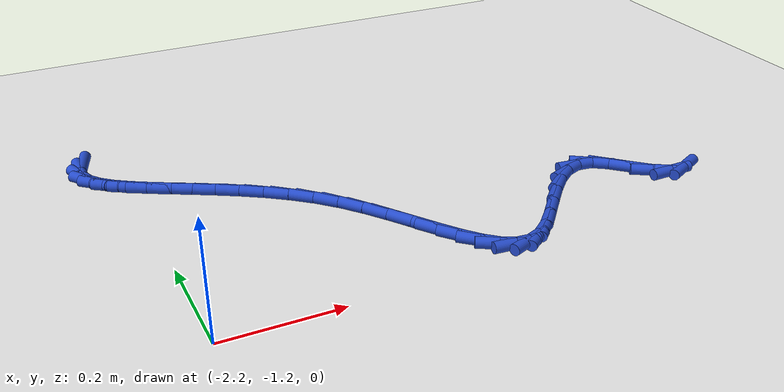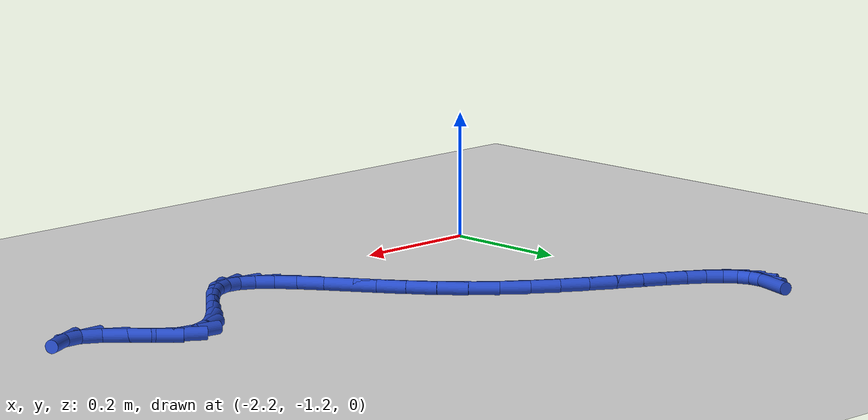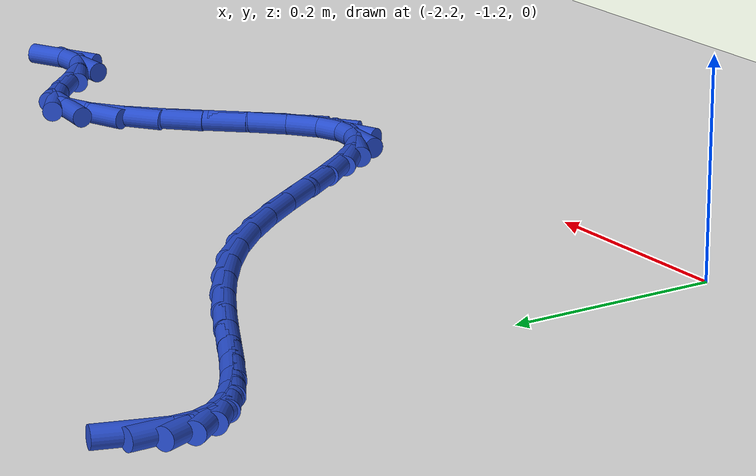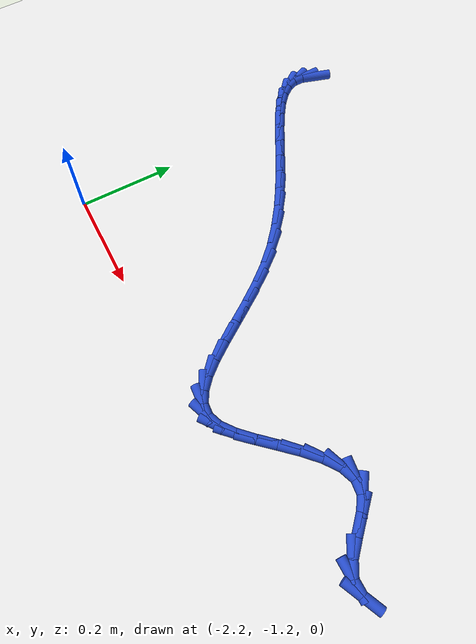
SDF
<sdf version="1.6">
 <world name="default">
  <model name="ground_plane">
   <static>1</static>
   <link name="link">
    <collision name="collision">
     <geometry><plane><normal>0 0 1</normal><size>100 100</size></plane></geometry>
     <surface><friction><ode><mu>100</mu><mu2>50</mu2></ode></friction></surface>
    </collision>
    <visual name="visual">
     <cast_shadows>0</cast_shadows>
     <geometry><plane><normal>0 0 1</normal><size>100 100</size></plane></geometry>
     <material>
      <script><uri>file://media/materials/scripts/gazebo.material</uri><name>Gazebo/WhiteGlow</name></script>
     </material>
    </visual>
   </link>
  </model>
  <model name="line">
   <link name="link_133">
    <pose>-2.264386961766214 -0.6096359925569589 0.01 0 1.57 1.2716807429699746</pose>
    <collision name="collision">
     <geometry><cylinder><radius>0.01</radius><length>0.08</length></cylinder></geometry>
    </collision>
    <visual name="visual">
     <material>
      <script><name>Gazebo/Blue</name><uri>file://media/materials/scripts/gazebo.material</uri></script>
     </material>
     <geometry><cylinder><radius>0.01</radius><length>0.08</length></cylinder></geometry>
    </visual>
   </link>
   <link name="link_134">
    <pose>-2.2714418762713504 -0.6325142634682939 0.01 0 1.57 -1.5569376244458604</pose>
    <collision name="collision">
     <geometry><cylinder><radius>0.01</radius><length>0.08</length></cylinder></geometry>
    </collision>
    <visual name="visual">
     <material>
      <script><name>Gazebo/Blue</name><uri>file://media/materials/scripts/gazebo.material</uri></script>
     </material>
     <geometry><cylinder><radius>0.01</radius><length>0.08</length></cylinder></geometry>
    </visual>
   </link>
   <link name="link_135">
    <pose>-2.271149407676412 -0.6536165184370312 0.01 0 1.57 -1.195219800106904</pose>
    <collision name="collision">
     <geometry><cylinder><radius>0.01</radius><length>0.08</length></cylinder></geometry>
    </collision>
    <visual name="visual">
     <material>
      <script><name>Gazebo/Blue</name><uri>file://media/materials/scripts/gazebo.material</uri></script>
     </material>
     <geometry><cylinder><radius>0.01</radius><length>0.08</length></cylinder></geometry>
    </visual>
   </link>
   <link name="link_136">
    <pose>-2.2634625045053087 -0.6731119477776801 0.01 0 1.57 -0.908454418214925</pose>
    <collision name="collision">
     <geometry><cylinder><radius>0.01</radius><length>0.08</length></cylinder></geometry>
    </collision>
    <visual name="visual">
     <material>
      <script><name>Gazebo/Blue</name><uri>file://media/materials/scripts/gazebo.material</uri></script>
     </material>
     <geometry><cylinder><radius>0.01</radius><length>0.08</length></cylinder></geometry>
    </visual>
   </link>
   <link name="link_137">
    <pose>-2.2491867083009063 -0.6914174356720993 0.01 0 1.57 -0.7190890568240736</pose>
    <collision name="collision">
     <geometry><cylinder><radius>0.01</radius><length>0.08</length></cylinder></geometry>
    </collision>
    <visual name="visual">
     <material>
      <script><name>Gazebo/Blue</name><uri>file://media/materials/scripts/gazebo.material</uri></script>
     </material>
     <geometry><cylinder><radius>0.01</radius><length>0.08</length></cylinder></geometry>
    </visual>
   </link>
   <link name="link_138">
    <pose>-2.2291520042480517 -0.7089569676272565 0.01 0 1.57 -0.6032406228926624</pose>
    <collision name="collision">
     <geometry><cylinder><radius>0.01</radius><length>0.08</length></cylinder></geometry>
    </collision>
    <visual name="visual">
     <material>
      <script><name>Gazebo/Blue</name><uri>file://media/materials/scripts/gazebo.material</uri></script>
     </material>
     <geometry><cylinder><radius>0.01</radius><length>0.08</length></cylinder></geometry>
    </visual>
   </link>
   <link name="link_139">
    <pose>-2.2041883775315902 -0.726154529150119 0.01 0 1.57 -0.5364134177935866</pose>
    <collision name="collision">
     <geometry><cylinder><radius>0.01</radius><length>0.08</length></cylinder></geometry>
    </collision>
    <visual name="visual">
     <material>
      <script><name>Gazebo/Blue</name><uri>file://media/materials/scripts/gazebo.material</uri></script>
     </material>
     <geometry><cylinder><radius>0.01</radius><length>0.08</length></cylinder></geometry>
    </visual>
   </link>
   <link name="link_140">
    <pose>-2.1751258133363667 -0.7434341057476551 0.01 0 1.57 -0.5029202195754221</pose>
    <collision name="collision">
     <geometry><cylinder><radius>0.01</radius><length>0.08</length></cylinder></geometry>
    </collision>
    <visual name="visual">
     <material>
      <script><name>Gazebo/Blue</name><uri>file://media/materials/scripts/gazebo.material</uri></script>
     </material>
     <geometry><cylinder><radius>0.01</radius><length>0.08</length></cylinder></geometry>
    </visual>
   </link>
   <link name="link_141">
    <pose>-2.142794296847227 -0.7612196829268313 0.01 0 1.57 -0.49378517892831164</pose>
    <collision name="collision">
     <geometry><cylinder><radius>0.01</radius><length>0.08</length></cylinder></geometry>
    </collision>
    <visual name="visual">
     <material>
      <script><name>Gazebo/Blue</name><uri>file://media/materials/scripts/gazebo.material</uri></script>
     </material>
     <geometry><cylinder><radius>0.01</radius><length>0.08</length></cylinder></geometry>
    </visual>
   </link>
   <link name="link_142">
    <pose>-2.1080238132490177 -0.7799352461946156 0.01 0 1.57 -0.5041260394963949</pose>
    <collision name="collision">
     <geometry><cylinder><radius>0.01</radius><length>0.08</length></cylinder></geometry>
    </collision>
    <visual name="visual">
     <material>
      <script><name>Gazebo/Blue</name><uri>file://media/materials/scripts/gazebo.material</uri></script>
     </material>
     <geometry><cylinder><radius>0.01</radius><length>0.08</length></cylinder></geometry>
    </visual>
   </link>
   <link name="link_143">
    <pose>-2.071644347726584 -0.8000047810579759 0.01 0 1.57 -0.5315155684292016</pose>
    <collision name="collision">
     <geometry><cylinder><radius>0.01</radius><length>0.08</length></cylinder></geometry>
    </collision>
    <visual name="visual">
     <material>
      <script><name>Gazebo/Blue</name><uri>file://media/materials/scripts/gazebo.material</uri></script>
     </material>
     <geometry><cylinder><radius>0.01</radius><length>0.08</length></cylinder></geometry>
    </visual>
   </link>
   <link name="link_144">
    <pose>-2.03448588546477 -0.82185227302388 0.01 0 1.57 -0.5750399174232601</pose>
    <collision name="collision">
     <geometry><cylinder><radius>0.01</radius><length>0.08</length></cylinder></geometry>
    </collision>
    <visual name="visual">
     <material>
      <script><name>Gazebo/Blue</name><uri>file://media/materials/scripts/gazebo.material</uri></script>
     </material>
     <geometry><cylinder><radius>0.01</radius><length>0.08</length></cylinder></geometry>
    </visual>
   </link>
   <link name="link_145">
    <pose>-1.997378411648424 -0.8459017075992946 0.01 0 1.57 -0.6347073488056755</pose>
    <collision name="collision">
     <geometry><cylinder><radius>0.01</radius><length>0.08</length></cylinder></geometry>
    </collision>
    <visual name="visual">
     <material>
      <script><name>Gazebo/Blue</name><uri>file://media/materials/scripts/gazebo.material</uri></script>
     </material>
     <geometry><cylinder><radius>0.01</radius><length>0.08</length></cylinder></geometry>
    </visual>
   </link>
   <link name="link_146">
    <pose>-1.9611519114623903 -0.8725770702911879 0.01 0 1.57 -0.7109685979086007</pose>
    <collision name="collision">
     <geometry><cylinder><radius>0.01</radius><length>0.08</length></cylinder></geometry>
    </collision>
    <visual name="visual">
     <material>
      <script><name>Gazebo/Blue</name><uri>file://media/materials/scripts/gazebo.material</uri></script>
     </material>
     <geometry><cylinder><radius>0.01</radius><length>0.08</length></cylinder></geometry>
    </visual>
   </link>
   <link name="link_147">
    <pose>-1.9266363700915141 -0.9023023466065272 0.01 0 1.57 -0.8031879850620592</pose>
    <collision name="collision">
     <geometry><cylinder><radius>0.01</radius><length>0.08</length></cylinder></geometry>
    </collision>
    <visual name="visual">
     <material>
      <script><name>Gazebo/Blue</name><uri>file://media/materials/scripts/gazebo.material</uri></script>
     </material>
     <geometry><cylinder><radius>0.01</radius><length>0.08</length></cylinder></geometry>
    </visual>
   </link>
   <link name="link_148">
    <pose>-1.8946365118876514 -0.9354614942024261 0.01 0 1.57 -0.8882136783470158</pose>
    <collision name="collision">
     <geometry><cylinder><radius>0.01</radius><length>0.08</length></cylinder></geometry>
    </collision>
    <visual name="visual">
     <material>
      <script><name>Gazebo/Blue</name><uri>file://media/materials/scripts/gazebo.material</uri></script>
     </material>
     <geometry><cylinder><radius>0.01</radius><length>0.08</length></cylinder></geometry>
    </visual>
   </link>
   <link name="link_149">
    <pose>-1.8653536621932048 -0.9714823357992403 0.01 0 1.57 -0.94500986324574</pose>
    <collision name="collision">
     <geometry><cylinder><radius>0.01</radius><length>0.08</length></cylinder></geometry>
    </collision>
    <visual name="visual">
     <material>
      <script><name>Gazebo/Blue</name><uri>file://media/materials/scripts/gazebo.material</uri></script>
     </material>
     <geometry><cylinder><radius>0.01</radius><length>0.08</length></cylinder></geometry>
    </visual>
   </link>
   <link name="link_150">
    <pose>-1.8383730342219387 -1.0088164142064913 0.01 0 1.57 -0.9750284544136951</pose>
    <collision name="collision">
     <geometry><cylinder><radius>0.01</radius><length>0.08</length></cylinder></geometry>
    </collision>
    <visual name="visual">
     <material>
      <script><name>Gazebo/Blue</name><uri>file://media/materials/scripts/gazebo.material</uri></script>
     </material>
     <geometry><cylinder><radius>0.01</radius><length>0.08</length></cylinder></geometry>
    </visual>
   </link>
   <link name="link_151">
    <pose>-1.8132520373842744 -1.0458712148399438 0.01 0 1.57 -0.977917537627587</pose>
    <collision name="collision">
     <geometry><cylinder><radius>0.01</radius><length>0.08</length></cylinder></geometry>
    </collision>
    <visual name="visual">
     <material>
      <script><name>Gazebo/Blue</name><uri>file://media/materials/scripts/gazebo.material</uri></script>
     </material>
     <geometry><cylinder><radius>0.01</radius><length>0.08</length></cylinder></geometry>
    </visual>
   </link>
   <link name="link_152">
    <pose>-1.7895480810906328 -1.0810542231153621 0.01 0 1.57 -0.9490184813868867</pose>
    <collision name="collision">
     <geometry><cylinder><radius>0.01</radius><length>0.08</length></cylinder></geometry>
    </collision>
    <visual name="visual">
     <material>
      <script><name>Gazebo/Blue</name><uri>file://media/materials/scripts/gazebo.material</uri></script>
     </material>
     <geometry><cylinder><radius>0.01</radius><length>0.08</length></cylinder></geometry>
    </visual>
   </link>
   <link name="link_153">
    <pose>-1.766818574751434 -1.1127729244485118 0.01 0 1.57 -0.8765139016475683</pose>
    <collision name="collision">
     <geometry><cylinder><radius>0.01</radius><length>0.08</length></cylinder></geometry>
    </collision>
    <visual name="visual">
     <material>
      <script><name>Gazebo/Blue</name><uri>file://media/materials/scripts/gazebo.material</uri></script>
     </material>
     <geometry><cylinder><radius>0.01</radius><length>0.08</length></cylinder></geometry>
    </visual>
   </link>
   <link name="link_154">
    <pose>-1.7446209277771003 -1.139434804255156 0.01 0 1.57 -0.7356816011587097</pose>
    <collision name="collision">
     <geometry><cylinder><radius>0.01</radius><length>0.08</length></cylinder></geometry>
    </collision>
    <visual name="visual">
     <material>
      <script><name>Gazebo/Blue</name><uri>file://media/materials/scripts/gazebo.material</uri></script>
     </material>
     <geometry><cylinder><radius>0.01</radius><length>0.08</length></cylinder></geometry>
    </visual>
   </link>
   <link name="link_155">
    <pose>-1.7225125495780529 -1.1594473479510605 0.01 0 1.57 -0.48268937214959234</pose>
    <collision name="collision">
     <geometry><cylinder><radius>0.01</radius><length>0.08</length></cylinder></geometry>
    </collision>
    <visual name="visual">
     <material>
      <script><name>Gazebo/Blue</name><uri>file://media/materials/scripts/gazebo.material</uri></script>
     </material>
     <geometry><cylinder><radius>0.01</radius><length>0.08</length></cylinder></geometry>
    </visual>
   </link>
   <link name="link_156">
    <pose>-1.700050849564712 -1.1712180409519894 0.01 0 1.57 -0.0830640873281371</pose>
    <collision name="collision">
     <geometry><cylinder><radius>0.01</radius><length>0.08</length></cylinder></geometry>
    </collision>
    <visual name="visual">
     <material>
      <script><name>Gazebo/Blue</name><uri>file://media/materials/scripts/gazebo.material</uri></script>
     </material>
     <geometry><cylinder><radius>0.01</radius><length>0.08</length></cylinder></geometry>
    </visual>
   </link>
   <link name="link_157">
    <pose>-1.6767932371474994 -1.1731543686737074 0.01 0 1.57 0.3680110501338447</pose>
    <collision name="collision">
     <geometry><cylinder><radius>0.01</radius><length>0.08</length></cylinder></geometry>
    </collision>
    <visual name="visual">
     <material>
      <script><name>Gazebo/Blue</name><uri>file://media/materials/scripts/gazebo.material</uri></script>
     </material>
     <geometry><cylinder><radius>0.01</radius><length>0.08</length></cylinder></geometry>
    </visual>
   </link>
   <link name="link_158">
    <pose>-1.65230372174208 -1.1637117806870614 0.01 0 1.57 0.6647763920746428</pose>
    <collision name="collision">
     <geometry><cylinder><radius>0.01</radius><length>0.08</length></cylinder></geometry>
    </collision>
    <visual name="visual">
     <material>
      <script><name>Gazebo/Blue</name><uri>file://media/materials/scripts/gazebo.material</uri></script>
     </material>
     <geometry><cylinder><radius>0.01</radius><length>0.08</length></cylinder></geometry>
    </visual>
   </link>
   <link name="link_159">
    <pose>-1.6264338457310397 -1.1434353121473901 0.01 0 1.57 0.798314630335366</pose>
    <collision name="collision">
     <geometry><cylinder><radius>0.01</radius><length>0.08</length></cylinder></geometry>
    </collision>
    <visual name="visual">
     <material>
      <script><name>Gazebo/Blue</name><uri>file://media/materials/scripts/gazebo.material</uri></script>
     </material>
     <geometry><cylinder><radius>0.01</radius><length>0.08</length></cylinder></geometry>
    </visual>
   </link>
   <link name="link_160">
    <pose>-1.5994276338832982 -1.1157222817079535 0.01 0 1.57 0.8472007286356905</pose>
    <collision name="collision">
     <geometry><cylinder><radius>0.01</radius><length>0.08</length></cylinder></geometry>
    </collision>
    <visual name="visual">
     <material>
      <script><name>Gazebo/Blue</name><uri>file://media/materials/scripts/gazebo.material</uri></script>
     </material>
     <geometry><cylinder><radius>0.01</radius><length>0.08</length></cylinder></geometry>
    </visual>
   </link>
   <link name="link_161">
    <pose>-1.571557339970667 -1.0841751563851356 0.01 0 1.57 0.8403987911569731</pose>
    <collision name="collision">
     <geometry><cylinder><radius>0.01</radius><length>0.08</length></cylinder></geometry>
    </collision>
    <visual name="visual">
     <material>
      <script><name>Gazebo/Blue</name><uri>file://media/materials/scripts/gazebo.material</uri></script>
     </material>
     <geometry><cylinder><radius>0.01</radius><length>0.08</length></cylinder></geometry>
    </visual>
   </link>
   <link name="link_162">
    <pose>-1.5430952177649575 -1.0523964031953181 0.01 0 1.57 0.778862407001623</pose>
    <collision name="collision">
     <geometry><cylinder><radius>0.01</radius><length>0.08</length></cylinder></geometry>
    </collision>
    <visual name="visual">
     <material>
      <script><name>Gazebo/Blue</name><uri>file://media/materials/scripts/gazebo.material</uri></script>
     </material>
     <geometry><cylinder><radius>0.01</radius><length>0.08</length></cylinder></geometry>
    </visual>
   </link>
   <link name="link_163">
    <pose>-1.5143135210379828 -1.0239884891548874 0.01 0 1.57 0.6393333265877444</pose>
    <collision name="collision">
     <geometry><cylinder><radius>0.01</radius><length>0.08</length></cylinder></geometry>
    </collision>
    <visual name="visual">
     <material>
      <script><name>Gazebo/Blue</name><uri>file://media/materials/scripts/gazebo.material</uri></script>
     </material>
     <geometry><cylinder><radius>0.01</radius><length>0.08</length></cylinder></geometry>
    </visual>
   </link>
   <link name="link_164">
    <pose>-1.4854845035615543 -1.002553881280225 0.01 0 1.57 0.3628195655513782</pose>
    <collision name="collision">
     <geometry><cylinder><radius>0.01</radius><length>0.08</length></cylinder></geometry>
    </collision>
    <visual name="visual">
     <material>
      <script><name>Gazebo/Blue</name><uri>file://media/materials/scripts/gazebo.material</uri></script>
     </material>
     <geometry><cylinder><radius>0.01</radius><length>0.08</length></cylinder></geometry>
    </visual>
   </link>
   <link name="link_165">
    <pose>-1.4568804191074838 -0.9916950465877147 0.01 0 1.57 -0.1175273788153741</pose>
    <collision name="collision">
     <geometry><cylinder><radius>0.01</radius><length>0.08</length></cylinder></geometry>
    </collision>
    <visual name="visual">
     <material>
      <script><name>Gazebo/Blue</name><uri>file://media/materials/scripts/gazebo.material</uri></script>
     </material>
     <geometry><cylinder><radius>0.01</radius><length>0.08</length></cylinder></geometry>
    </visual>
   </link>
   <link name="link_166">
    <pose>-1.4287734772790737 -0.9950136756016081 0.01 0 1.57 -0.5935058569173215</pose>
    <collision name="collision">
     <geometry><cylinder><radius>0.01</radius><length>0.08</length></cylinder></geometry>
    </collision>
    <visual name="visual">
     <material>
      <script><name>Gazebo/Blue</name><uri>file://media/materials/scripts/gazebo.material</uri></script>
     </material>
     <geometry><cylinder><radius>0.01</radius><length>0.08</length></cylinder></geometry>
    </visual>
   </link>
   <link name="link_167">
    <pose>-1.4012904683326568 -1.0135549546453573 0.01 0 1.57 -0.7734918971609722</pose>
    <collision name="collision">
     <geometry><cylinder><radius>0.01</radius><length>0.08</length></cylinder></geometry>
    </collision>
    <visual name="visual">
     <material>
      <script><name>Gazebo/Blue</name><uri>file://media/materials/scripts/gazebo.material</uri></script>
     </material>
     <geometry><cylinder><radius>0.01</radius><length>0.08</length></cylinder></geometry>
    </visual>
   </link>
   <link name="link_168">
    <pose>-1.3740890291461683 -1.0401162501499797 0.01 0 1.57 -0.7545434486237496</pose>
    <collision name="collision">
     <geometry><cylinder><radius>0.01</radius><length>0.08</length></cylinder></geometry>
    </collision>
    <visual name="visual">
     <material>
      <script><name>Gazebo/Blue</name><uri>file://media/materials/scripts/gazebo.material</uri></script>
     </material>
     <geometry><cylinder><radius>0.01</radius><length>0.08</length></cylinder></geometry>
    </visual>
   </link>
   <link name="link_169">
    <pose>-1.34673236361689 -1.0658347759136753 0.01 0 1.57 -0.5202860643682474</pose>
    <collision name="collision">
     <geometry><cylinder><radius>0.01</radius><length>0.08</length></cylinder></geometry>
    </collision>
    <visual name="visual">
     <material>
      <script><name>Gazebo/Blue</name><uri>file://media/materials/scripts/gazebo.material</uri></script>
     </material>
     <geometry><cylinder><radius>0.01</radius><length>0.08</length></cylinder></geometry>
    </visual>
   </link>
   <link name="link_170">
    <pose>-1.3187836756421019 -1.0818477457346443 0.01 0 1.57 0.01545830292316335</pose>
    <collision name="collision">
     <geometry><cylinder><radius>0.01</radius><length>0.08</length></cylinder></geometry>
    </collision>
    <visual name="visual">
     <material>
      <script><name>Gazebo/Blue</name><uri>file://media/materials/scripts/gazebo.material</uri></script>
     </material>
     <geometry><cylinder><radius>0.01</radius><length>0.08</length></cylinder></geometry>
    </visual>
   </link>
   <link name="link_171">
    <pose>-1.2898961856103561 -1.081401158590452 0.01 0 1.57 0.44343336761942237</pose>
    <collision name="collision">
     <geometry><cylinder><radius>0.01</radius><length>0.08</length></cylinder></geometry>
    </collision>
    <visual name="visual">
     <material>
      <script><name>Gazebo/Blue</name><uri>file://media/materials/scripts/gazebo.material</uri></script>
     </material>
     <geometry><cylinder><radius>0.01</radius><length>0.08</length></cylinder></geometry>
    </visual>
   </link>
  </model>
 </world>
</sdf>
